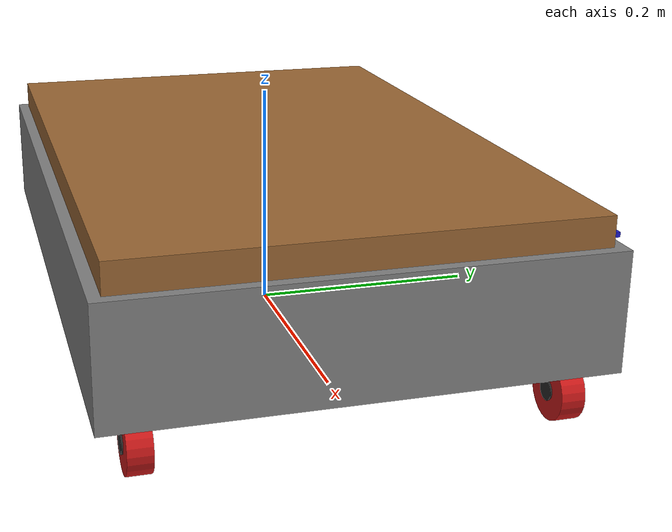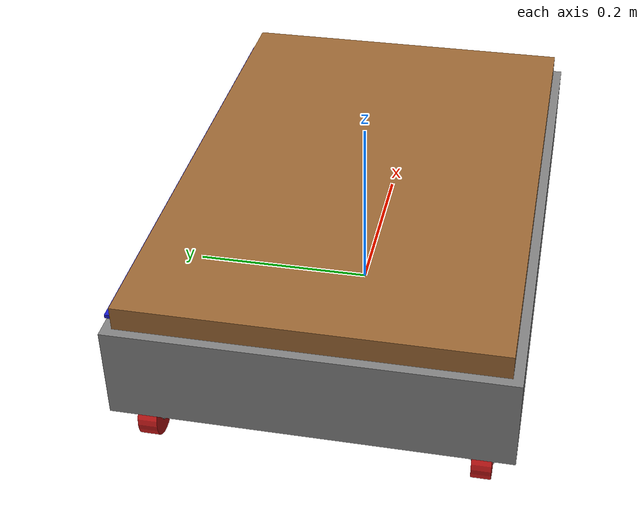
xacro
<?xml version="1.0"?>
<robot name="aeron_one" xmlns:xacro="http://www.ros.org/wiki/xacro">

  <!-- ===================== PARAMETERS ===================== -->
  <xacro:property name="wheel_y_offset" value="0.2"/>
  <xacro:property name="wheel_x_offset" value="0.2"/>
  <xacro:property name="front_y" value="0.3"/>
  <xacro:property name="rear_y" value="-0.3"/>

  <!-- ===================== INCLUDES ===================== -->
  <xacro:include filename="$(find pc_core)/description/urdf/base.xacro"/>
  <xacro:include filename="$(find pc_core)/description/urdf/drive_wheel.xacro"/>
  <xacro:include filename="$(find pc_core)/description/urdf/caster.xacro"/>

  <!-- ros2_control include -->
  <xacro:include filename="$(find pc_core)/description/ros2_control/aeron.ros2_control.xacro"/>

  <!-- ===================== ROBOT STRUCTURE ===================== -->

  <!-- Drive wheels -->
  <xacro:drive_wheel name="left_wheel"  x="0.0" y="${wheel_y_offset}"/>
  <xacro:drive_wheel name="right_wheel" x="0.0" y="-${wheel_y_offset}"/>

  <!-- Casters -->
  <xacro:caster name="front_right" x="${wheel_x_offset}" y="${front_y}"/>
  <xacro:caster name="front_left"  x="-${wheel_x_offset}" y="${front_y}"/>
  <xacro:caster name="rear_right"  x="${wheel_x_offset}" y="${rear_y}"/>
  <xacro:caster name="rear_left"   x="-${wheel_x_offset}" y="${rear_y}"/>

  <!-- ===================== ROS2 CONTROL ===================== -->

  <!-- MUST exist inside your ros2_control xacro -->
  <xacro:aeron_ros2_control name="AeronSystem"/>

  <!-- ===================== GAZEBO PLUGIN ===================== -->

  <gazebo>
  <plugin filename="gz_ros2_control-system"
          name="gz_ros2_control::GazeboSimROS2ControlPlugin">

    <parameters>/home/aadhi/ros2_ws/src/pc_core/config/controllers.yaml</parameters>

  </plugin>
</gazebo>
</robot>

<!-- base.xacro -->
<robot xmlns:xacro="http://www.ros.org/wiki/xacro">

  <!-- ================= PROPERTIES ================= -->

  <!--
    24 inch = 0.6096m → X axis (WIDE,  left to right)
    16 inch = 0.4064m → Y axis (SHORT, front to back)
  -->
  <xacro:property name="base_length" value="0.6096"/>  <!-- X = 24inch -->
  <xacro:property name="base_width"  value="0.4064"/>  <!-- Y = 16inch -->
  <xacro:property name="base_height" value="0.10"/>
  <xacro:property name="base_mass"   value="18.5"/>  <!-- 15.0 + ~3.5kg wood -->

  <xacro:property name="wheel_radius" value="0.03175"/>
  <xacro:property name="wheel_width"  value="0.0203"/>
  <xacro:property name="wheel_mass"   value="0.5"/>

  <xacro:property name="caster_radius" value="0.025"/>
  <xacro:property name="caster_width"  value="0.02"/>
  <xacro:property name="caster_mass"   value="0.2"/>

  <xacro:property name="wheel_x_offset" value="0.27"/>
  <xacro:property name="wheel_y_offset" value="0.17"/>
  <xacro:property name="front_y"        value=" 0.17"/>
  <xacro:property name="rear_y"         value="-0.17"/>

  <!-- ================= MATERIALS ================= -->

  <material name="grey">
    <color rgba="0.5 0.5 0.5 1.0"/>
  </material>
  <material name="dark_grey">
    <color rgba="0.15 0.15 0.15 1.0"/>
  </material>
  <material name="red">
    <color rgba="0.8 0.1 0.1 1.0"/>
  </material>
  <material name="white">
    <color rgba="0.9 0.9 0.9 1.0"/>
  </material>
  <material name="wood">
    <color rgba="0.6 0.4 0.2 1.0"/>
  </material>
  <material name="blue">
    <color rgba="0.1 0.1 0.8 1.0"/>
  </material>

  <!-- ================= BASE FOOTPRINT ================= -->

  <link name="base_footprint"/>

  <joint name="base_footprint_joint" type="fixed">
    <parent link="base_footprint"/>
    <child  link="base_link"/>
    <origin xyz="0 0 ${base_height/2.0 + wheel_radius}" rpy="0 0 0"/>
  </joint>

  <!-- ================= BASE LINK ================= -->

  <link name="base_link">

    <!-- Chassis box: x=24inch, y=16inch, z=height -->
    <visual>
      <origin xyz="0 0 0" rpy="0 0 0"/>
      <geometry>
        <box size="${base_length} ${base_width} ${base_height}"/>
      </geometry>
      <material name="grey"/>
    </visual>

    <!-- Wooden top layer (1 inch thick) -->
    <visual>
      <origin xyz="0 0 ${base_height/2.0 + 0.0254/2.0}" rpy="0 0 0"/>
      <geometry>
        <box size="${base_length - 0.02} ${base_width - 0.02} 0.0254"/>
      </geometry>
      <material name="wood"/>
    </visual>

    <collision>
      <origin xyz="0 0 ${base_height/2.0 + 0.0254/2.0}" rpy="0 0 0"/>
      <geometry>
        <box size="${base_length - 0.02} ${base_width - 0.02} 0.0254"/>
      </geometry>
    </collision>

    <!-- Front marker (blue strip at +Y face) -->
    <visual>
      <origin xyz="0 ${base_width/2.0 - 0.01} ${base_height/2.0 + 0.006}" rpy="0 0 0"/>
      <geometry>
        <box size="${base_length - 0.04} 0.02 0.004"/>
      </geometry>
      <material name="blue"/>
    </visual>

    <collision>
      <origin xyz="0 0 0" rpy="0 0 0"/>
      <geometry>
        <box size="${base_length} ${base_width} ${base_height}"/>
      </geometry>
    </collision>

    <inertial>
      <mass value="${base_mass}"/>
      <origin xyz="0 0 0" rpy="0 0 0"/>
      <inertia ixx="0.318" ixy="0.0" ixz="0.0"
               iyy="0.679" iyz="0.0"
               izz="0.944"/>
    </inertial>

  </link>

</robot>

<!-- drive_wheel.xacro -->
<robot xmlns:xacro="http://www.ros.org/wiki/xacro">

  <!-- DRIVE WHEEL MACRO -->
  <xacro:macro name="drive_wheel" params="name x y">

    <!-- ================= LINK ================= -->
    <link name="${name}">

      <!-- Visual -->
      <visual>
        <origin xyz="0 0 0" rpy="0 0 0"/>
        <geometry>
          <cylinder radius="${wheel_radius}" length="${wheel_width}"/>
        </geometry>
        <material name="dark_grey"/>
      </visual>

      <!-- Hub -->
      <visual>
        <origin xyz="0 0 0" rpy="0 0 0"/>
        <geometry>
          <cylinder radius="${wheel_radius * 0.35}" length="${wheel_width + 0.003}"/>
        </geometry>
        <material name="white"/>
      </visual>

      <!-- Collision -->
      <collision>
        <origin xyz="0 0 0" rpy="0 0 0"/>
        <geometry>
          <cylinder radius="${wheel_radius}" length="${wheel_width}"/>
        </geometry>
      </collision>

      <!-- Inertia -->
      <inertial>
        <mass value="${wheel_mass}"/>
        <origin xyz="0 0 0" rpy="0 0 0"/>
        <inertia
          ixx="${wheel_mass/12.0*(3*wheel_radius*wheel_radius + wheel_width*wheel_width)}"
          ixy="0.0" ixz="0.0"
          iyy="${wheel_mass/12.0*(3*wheel_radius*wheel_radius + wheel_width*wheel_width)}"
          iyz="0.0"
          izz="${wheel_mass/2.0*wheel_radius*wheel_radius}"/>
      </inertial>

    </link>

    <!-- ================= JOINT ================= -->
    <joint name="${name}_joint" type="continuous">
      <parent link="base_link"/>
      <child link="${name}"/>

      <!-- Wheel position -->
      <origin xyz="${x} ${y} ${-(base_height/2.0 + wheel_radius)}"
              rpy="1.5708 0 0"/>

      <!-- 🔥 FIXED AXIS (CRITICAL) -->
      <axis xyz="0 0 1"/>

      <dynamics damping="0.01" friction="0.1"/>
    </joint>

    <!-- ================= GAZEBO PROPERTIES ================= -->
    <gazebo reference="${name}">
      <mu1>1.0</mu1>
      <mu2>1.0</mu2>
      <kp>1000000.0</kp>
      <kd>1.0</kd>
    </gazebo>

  </xacro:macro>

</robot>

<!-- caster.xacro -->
<robot xmlns:xacro="http://www.ros.org/wiki/xacro">

  <xacro:macro name="caster" params="name x y">

    <link name="${name}_mount">
      <inertial>
        <mass value="0.001"/>
        <origin xyz="0 0 0" rpy="0 0 0"/>
        <inertia ixx="0.0000001" ixy="0.0" ixz="0.0"
                 iyy="0.0000001" iyz="0.0"
                 izz="0.0000001"/>
      </inertial>
    </link>

    <link name="${name}_wheel">

      <visual>
        <origin xyz="0 0 0" rpy="0 0 0"/>
        <geometry>
          <cylinder radius="${caster_radius}" length="${caster_width}"/>
        </geometry>
        <material name="red"/>
      </visual>

      <!-- Hub -->
      <visual>
        <origin xyz="0 0 0" rpy="0 0 0"/>
        <geometry>
          <cylinder radius="${caster_radius * 0.35}" length="${caster_width + 0.003}"/>
        </geometry>
        <material name="dark_grey"/>
      </visual>

      <collision>
        <origin xyz="0 0 0" rpy="0 0 0"/>
        <geometry>
          <cylinder radius="${caster_radius}" length="${caster_width}"/>
        </geometry>
      </collision>

      <inertial>
        <mass value="${caster_mass}"/>
        <origin xyz="0 0 0" rpy="0 0 0"/>
        <inertia
          ixx="${caster_mass/12.0*(3*caster_radius*caster_radius + caster_width*caster_width)}"
          ixy="0.0" ixz="0.0"
          iyy="${caster_mass/12.0*(3*caster_radius*caster_radius + caster_width*caster_width)}"
          iyz="0.0"
          izz="${caster_mass/2.0*caster_radius*caster_radius}"/>
      </inertial>

    </link>

    <joint name="${name}_swivel" type="continuous">
      <parent link="base_link"/>
      <child  link="${name}_mount"/>
      <origin xyz="${x} ${y} ${-(base_height/2.0 + caster_radius)}" rpy="0 0 0"/>
      <axis xyz="0 0 1"/>
      <dynamics damping="0.001" friction="0.0"/>
    </joint>

    <joint name="${name}_wheel_joint" type="continuous">
      <parent link="${name}_mount"/>
      <child  link="${name}_wheel"/>
      <origin xyz="0 0 0" rpy="1.5708 0 0"/>
      <axis xyz="0 1 0"/>
      <dynamics damping="0.001" friction="0.0"/>
    </joint>

  </xacro:macro>

</robot>
